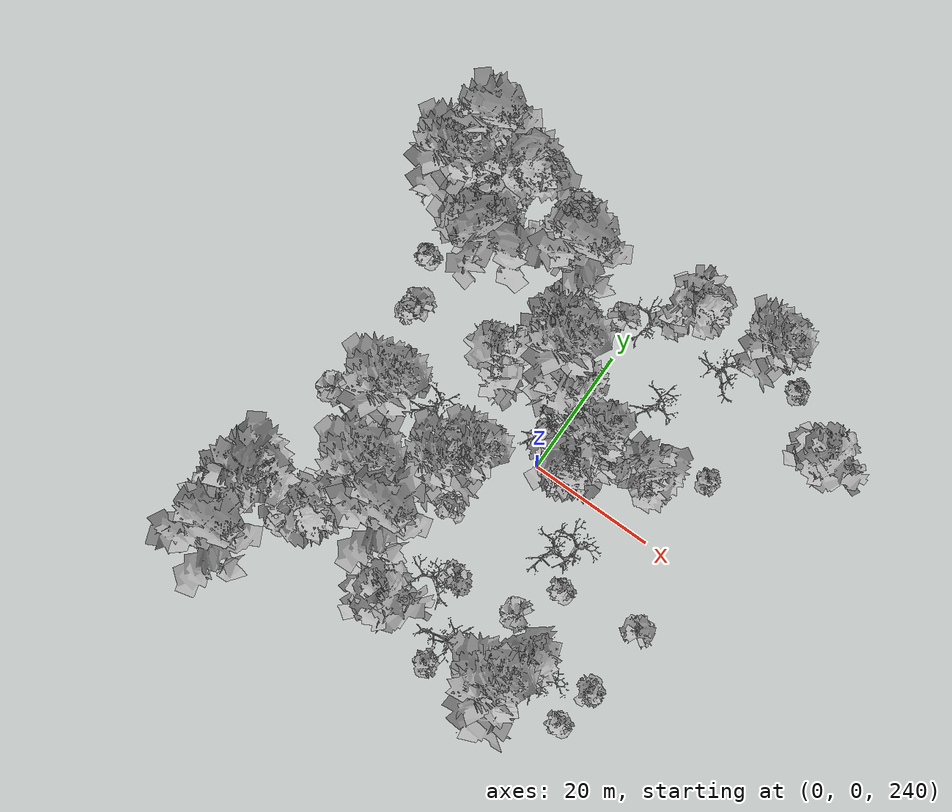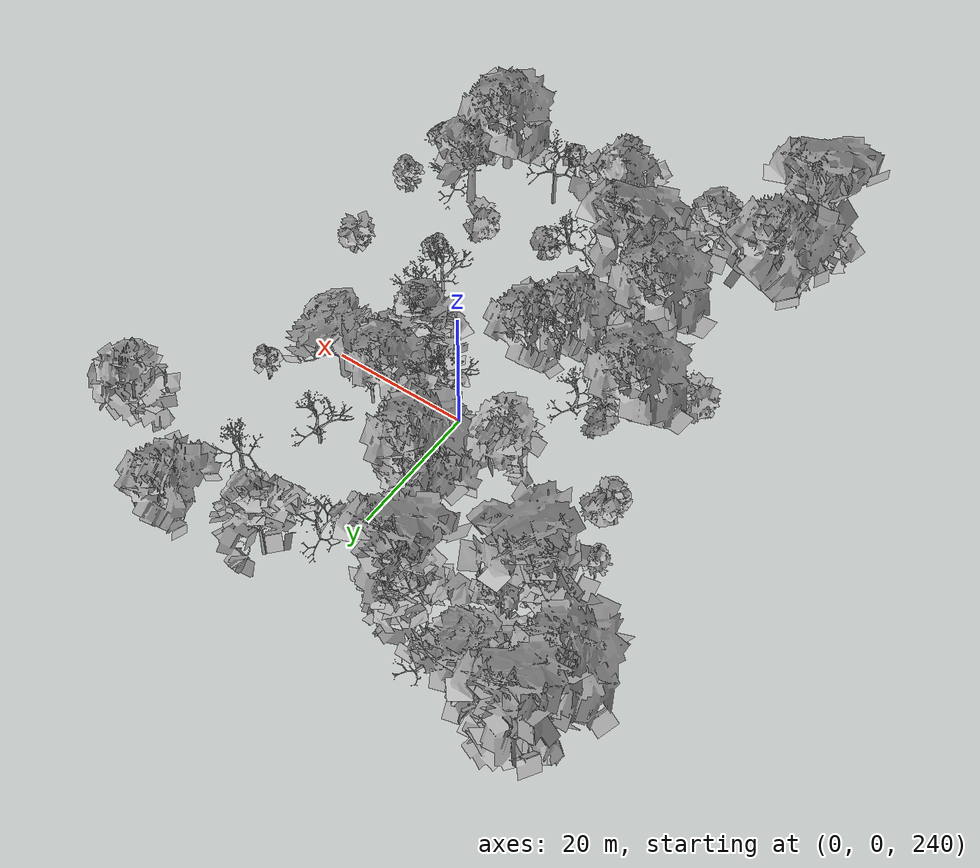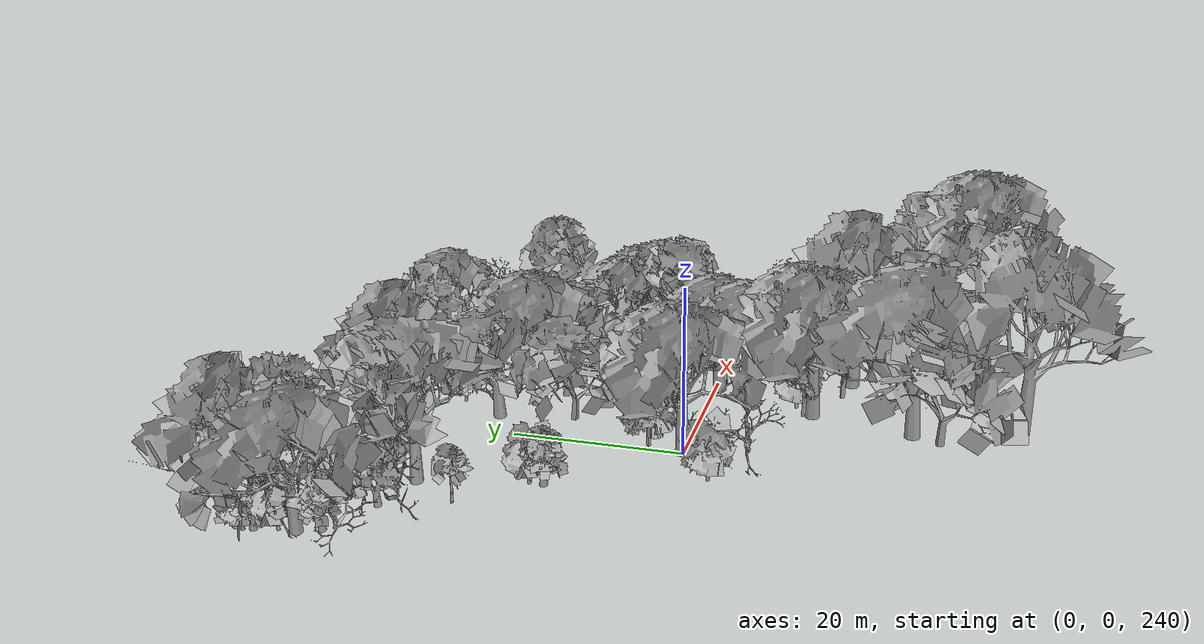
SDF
<sdf version="1.6">
 <world name="default">
  <light name="sun" type="directional">
   <pose>0 0 10 0 -0 0</pose>
   <diffuse>0.8 0.8 0.8 1</diffuse>
   <specular>0.2 0.2 0.2 1</specular>
   <attenuation>
    <range>1000</range>
    <constant>0.9</constant>
    <linear>0.01</linear>
    <quadratic>0.001</quadratic>
   </attenuation>
   <direction>-0.5 0.1 -0.9</direction>
  </light>
  <scene>
   <sky><clouds><speed>12</speed></clouds></sky>
   <ambient>0.4 0.4 0.4 1</ambient>
   <background>0.7 0.7 0.7 1</background>
   <shadows>1</shadows>
  </scene>
  <spherical_coordinates>
   <surface_model>EARTH_WGS84</surface_model>
   <latitude_deg>47.3977</latitude_deg>
   <longitude_deg>8.54559</longitude_deg>
   <elevation>0</elevation>
   <heading_deg>0</heading_deg>
  </spherical_coordinates>
  <physics name="default_physics" default="0" type="ode">
   <ode>
    <solver>
     <type>quick</type>
     <iters>100</iters>
     <sor>1.3</sor>
     <use_dynamic_moi_rescaling>0</use_dynamic_moi_rescaling>
    </solver>
    <constraints>
     <cfm>0</cfm>
     <erp>0.2</erp>
     <contact_max_correcting_vel>100</contact_max_correcting_vel>
     <contact_surface_layer>0.001</contact_surface_layer>
    </constraints>
   </ode>
   <max_step_size>0.002</max_step_size>
   <real_time_factor>1</real_time_factor>
   <real_time_update_rate>500</real_time_update_rate>
  </physics>
  <gravity>0 0 -9.8</gravity>
  <magnetic_field>6e-06 2.3e-05 -4.2e-05</magnetic_field>
  <atmosphere type="adiabatic"/>
  <model name="my_mesh0">
   <pose>-30.4895 23.0853 246.841 0 0 -0.739333</pose>
   <static>1</static>
   <link name="body">
    <visual name="visual">
     <geometry><mesh><uri>model://trees/0.dae</uri><scale>1 1 1</scale></mesh></geometry>
    </visual>
    <collision name="collision">
     <geometry><mesh><uri>model://trees/0.dae</uri><scale>1 1 1</scale></mesh></geometry>
    </collision>
   </link>
  </model>
  <model name="my_mesh1">
   <pose>-31.8235 30.2881 245.908 0 -0 1.54444</pose>
   <static>1</static>
   <link name="body">
    <visual name="visual">
     <geometry><mesh><uri>model://trees/13.dae</uri><scale>1 1 1</scale></mesh></geometry>
    </visual>
    <collision name="collision">
     <geometry><mesh><uri>model://trees/13.dae</uri><scale>1 1 1</scale></mesh></geometry>
    </collision>
   </link>
  </model>
  <model name="my_mesh2">
   <pose>-33.3648 33.0622 245.455 0 0 -0.035598</pose>
   <static>1</static>
   <link name="body">
    <visual name="visual">
     <geometry><mesh><uri>model://trees/7.dae</uri><scale>1 1 1</scale></mesh></geometry>
    </visual>
    <collision name="collision">
     <geometry><mesh><uri>model://trees/7.dae</uri><scale>1 1 1</scale></mesh></geometry>
    </collision>
   </link>
  </model>
  <model name="my_mesh3">
   <pose>-26.2538 35.2569 244.942 0 0 -1.43768</pose>
   <static>1</static>
   <link name="body">
    <visual name="visual">
     <geometry><mesh><uri>model://trees/8.dae</uri><scale>1 1 1</scale></mesh></geometry>
    </visual>
    <collision name="collision">
     <geometry><mesh><uri>model://trees/8.dae</uri><scale>1 1 1</scale></mesh></geometry>
    </collision>
   </link>
  </model>
  <model name="my_mesh4">
   <pose>-27.6537 29.1796 246.184 0 -0 0.764863</pose>
   <static>1</static>
   <link name="body">
    <visual name="visual">
     <geometry><mesh><uri>model://trees/19.dae</uri><scale>1 1 1</scale></mesh></geometry>
    </visual>
    <collision name="collision">
     <geometry><mesh><uri>model://trees/19.dae</uri><scale>1 1 1</scale></mesh></geometry>
    </collision>
   </link>
  </model>
  <model name="my_mesh5">
   <pose>-32.5691 28.2777 246.244 0 0 -1.03485</pose>
   <static>1</static>
   <link name="body">
    <visual name="visual">
     <geometry><mesh><uri>model://trees/2.dae</uri><scale>1 1 1</scale></mesh></geometry>
    </visual>
    <collision name="collision">
     <geometry><mesh><uri>model://trees/2.dae</uri><scale>1 1 1</scale></mesh></geometry>
    </collision>
   </link>
  </model>
  <model name="my_mesh6">
   <pose>-34.2355 35.939 244.93 0 -0 0.573628</pose>
   <static>1</static>
   <link name="body">
    <visual name="visual">
     <geometry><mesh><uri>model://trees/10.dae</uri><scale>1 1 1</scale></mesh></geometry>
    </visual>
    <collision name="collision">
     <geometry><mesh><uri>model://trees/10.dae</uri><scale>1 1 1</scale></mesh></geometry>
    </collision>
   </link>
  </model>
  <model name="my_mesh7">
   <pose>-30.7915 15.3641 248.406 0 -0 1.08461</pose>
   <static>1</static>
   <link name="body">
    <visual name="visual">
     <geometry><mesh><uri>model://trees/2.dae</uri><scale>1 1 1</scale></mesh></geometry>
    </visual>
    <collision name="collision">
     <geometry><mesh><uri>model://trees/2.dae</uri><scale>1 1 1</scale></mesh></geometry>
    </collision>
   </link>
  </model>
  <model name="my_mesh8">
   <pose>-34.97 35.0989 245.01 0 -0 1.31735</pose>
   <static>1</static>
   <link name="body">
    <visual name="visual">
     <geometry><mesh><uri>model://trees/5.dae</uri><scale>1 1 1</scale></mesh></geometry>
    </visual>
    <collision name="collision">
     <geometry><mesh><uri>model://trees/5.dae</uri><scale>1 1 1</scale></mesh></geometry>
    </collision>
   </link>
  </model>
  <model name="my_mesh9">
   <pose>-25.357 21.22 247.02 0 -0 1.40984</pose>
   <static>1</static>
   <link name="body">
    <visual name="visual">
     <geometry><mesh><uri>model://trees/10.dae</uri><scale>1 1 1</scale></mesh></geometry>
    </visual>
    <collision name="collision">
     <geometry><mesh><uri>model://trees/10.dae</uri><scale>1 1 1</scale></mesh></geometry>
    </collision>
   </link>
  </model>
  <model name="my_mesh10">
   <pose>-25.2448 35.5482 244.956 0 0 -0.233337</pose>
   <static>1</static>
   <link name="body">
    <visual name="visual">
     <geometry><mesh><uri>model://trees/2.dae</uri><scale>1 1 1</scale></mesh></geometry>
    </visual>
    <collision name="collision">
     <geometry><mesh><uri>model://trees/2.dae</uri><scale>1 1 1</scale></mesh></geometry>
    </collision>
   </link>
  </model>
  <model name="my_mesh11">
   <pose>-35.0816 33.9081 245.287 0 -0 0.598715</pose>
   <static>1</static>
   <link name="body">
    <visual name="visual">
     <geometry><mesh><uri>model://trees/0.dae</uri><scale>1 1 1</scale></mesh></geometry>
    </visual>
    <collision name="collision">
     <geometry><mesh><uri>model://trees/0.dae</uri><scale>1 1 1</scale></mesh></geometry>
    </collision>
   </link>
  </model>
  <model name="my_mesh12">
   <pose>-33.9147 35.3037 245.052 0 -0 0.193149</pose>
   <static>1</static>
   <link name="body">
    <visual name="visual">
     <geometry><mesh><uri>model://trees/3.dae</uri><scale>1 1 1</scale></mesh></geometry>
    </visual>
    <collision name="collision">
     <geometry><mesh><uri>model://trees/3.dae</uri><scale>1 1 1</scale></mesh></geometry>
    </collision>
   </link>
  </model>
  <model name="my_mesh13">
   <pose>-28.8473 22.7714 246.894 0 0 -0.452417</pose>
   <static>1</static>
   <link name="body">
    <visual name="visual">
     <geometry><mesh><uri>model://trees/19.dae</uri><scale>1 1 1</scale></mesh></geometry>
    </visual>
    <collision name="collision">
     <geometry><mesh><uri>model://trees/19.dae</uri><scale>1 1 1</scale></mesh></geometry>
    </collision>
   </link>
  </model>
  <model name="my_mesh14">
   <pose>-15.406 29.9703 244.993 0 0 -0.849897</pose>
   <static>1</static>
   <link name="body">
    <visual name="visual">
     <geometry><mesh><uri>model://trees/13.dae</uri><scale>1 1 1</scale></mesh></geometry>
    </visual>
    <collision name="collision">
     <geometry><mesh><uri>model://trees/13.dae</uri><scale>1 1 1</scale></mesh></geometry>
    </collision>
   </link>
  </model>
  <model name="my_mesh15">
   <pose>-35.8805 28.9777 246.158 0 -0 0.900302</pose>
   <static>1</static>
   <link name="body">
    <visual name="visual">
     <geometry><mesh><uri>model://trees/9.dae</uri><scale>1 1 1</scale></mesh></geometry>
    </visual>
    <collision name="collision">
     <geometry><mesh><uri>model://trees/9.dae</uri><scale>1 1 1</scale></mesh></geometry>
    </collision>
   </link>
  </model>
  <model name="my_mesh16">
   <pose>-29.7071 33.0453 245.543 0 -0 1.05499</pose>
   <static>1</static>
   <link name="body">
    <visual name="visual">
     <geometry><mesh><uri>model://trees/5.dae</uri><scale>1 1 1</scale></mesh></geometry>
    </visual>
    <collision name="collision">
     <geometry><mesh><uri>model://trees/5.dae</uri><scale>1 1 1</scale></mesh></geometry>
    </collision>
   </link>
  </model>
  <model name="my_mesh17">
   <pose>-30.5908 32.6708 245.599 0 0 -1.00466</pose>
   <static>1</static>
   <link name="body">
    <visual name="visual">
     <geometry><mesh><uri>model://trees/5.dae</uri><scale>1 1 1</scale></mesh></geometry>
    </visual>
    <collision name="collision">
     <geometry><mesh><uri>model://trees/5.dae</uri><scale>1 1 1</scale></mesh></geometry>
    </collision>
   </link>
  </model>
  <model name="my_mesh18">
   <pose>-23.703 25.2212 246.115 0 -0 1.01436</pose>
   <static>1</static>
   <link name="body">
    <visual name="visual">
     <geometry><mesh><uri>model://trees/7.dae</uri><scale>1 1 1</scale></mesh></geometry>
    </visual>
    <collision name="collision">
     <geometry><mesh><uri>model://trees/7.dae</uri><scale>1 1 1</scale></mesh></geometry>
    </collision>
   </link>
  </model>
  <model name="my_mesh19">
   <pose>-35.2731 31.1681 245.725 0 -0 0.144149</pose>
   <static>1</static>
   <link name="body">
    <visual name="visual">
     <geometry><mesh><uri>model://trees/5.dae</uri><scale>1 1 1</scale></mesh></geometry>
    </visual>
    <collision name="collision">
     <geometry><mesh><uri>model://trees/5.dae</uri><scale>1 1 1</scale></mesh></geometry>
    </collision>
   </link>
  </model>
  <model name="my_mesh20">
   <pose>-34.8713 35.3614 245.01 0 -0 0.708343</pose>
   <static>1</static>
   <link name="body">
    <visual name="visual">
     <geometry><mesh><uri>model://trees/15.dae</uri><scale>1 1 1</scale></mesh></geometry>
    </visual>
    <collision name="collision">
     <geometry><mesh><uri>model://trees/15.dae</uri><scale>1 1 1</scale></mesh></geometry>
    </collision>
   </link>
  </model>
  <model name="my_mesh21">
   <pose>-34.0647 34.8323 245.174 0 0 -0.041876</pose>
   <static>1</static>
   <link name="body">
    <visual name="visual">
     <geometry><mesh><uri>model://trees/6.dae</uri><scale>1 1 1</scale></mesh></geometry>
    </visual>
    <collision name="collision">
     <geometry><mesh><uri>model://trees/6.dae</uri><scale>1 1 1</scale></mesh></geometry>
    </collision>
   </link>
  </model>
  <model name="my_mesh22">
   <pose>-25.7076 35.4669 244.956 0 0 -1.3193</pose>
   <static>1</static>
   <link name="body">
    <visual name="visual">
     <geometry><mesh><uri>model://trees/11.dae</uri><scale>1 1 1</scale></mesh></geometry>
    </visual>
    <collision name="collision">
     <geometry><mesh><uri>model://trees/11.dae</uri><scale>1 1 1</scale></mesh></geometry>
    </collision>
   </link>
  </model>
  <model name="my_mesh23">
   <pose>-31.4193 35.0466 245.221 0 0 -0.243636</pose>
   <static>1</static>
   <link name="body">
    <visual name="visual">
     <geometry><mesh><uri>model://trees/12.dae</uri><scale>1 1 1</scale></mesh></geometry>
    </visual>
    <collision name="collision">
     <geometry><mesh><uri>model://trees/12.dae</uri><scale>1 1 1</scale></mesh></geometry>
    </collision>
   </link>
  </model>
  <model name="my_mesh24">
   <pose>-32.532 32.9864 245.436 0 0 -0.705671</pose>
   <static>1</static>
   <link name="body">
    <visual name="visual">
     <geometry><mesh><uri>model://trees/18.dae</uri><scale>1 1 1</scale></mesh></geometry>
    </visual>
    <collision name="collision">
     <geometry><mesh><uri>model://trees/18.dae</uri><scale>1 1 1</scale></mesh></geometry>
    </collision>
   </link>
  </model>
  <model name="my_mesh25">
   <pose>-25.4141 30.7893 245.906 0 0 -0.732876</pose>
   <static>1</static>
   <link name="body">
    <visual name="visual">
     <geometry><mesh><uri>model://trees/5.dae</uri><scale>1 1 1</scale></mesh></geometry>
    </visual>
    <collision name="collision">
     <geometry><mesh><uri>model://trees/5.dae</uri><scale>1 1 1</scale></mesh></geometry>
    </collision>
   </link>
  </model>
  <model name="my_mesh26">
   <pose>-29.2152 26.6927 246.378 0 -0 1.1353</pose>
   <static>1</static>
   <link name="body">
    <visual name="visual">
     <geometry><mesh><uri>model://trees/4.dae</uri><scale>1 1 1</scale></mesh></geometry>
    </visual>
    <collision name="collision">
     <geometry><mesh><uri>model://trees/4.dae</uri><scale>1 1 1</scale></mesh></geometry>
    </collision>
   </link>
  </model>
  <model name="my_mesh27">
   <pose>-33.4902 34.7869 245.209 0 0 -0.125738</pose>
   <static>1</static>
   <link name="body">
    <visual name="visual">
     <geometry><mesh><uri>model://trees/15.dae</uri><scale>1 1 1</scale></mesh></geometry>
    </visual>
    <collision name="collision">
     <geometry><mesh><uri>model://trees/15.dae</uri><scale>1 1 1</scale></mesh></geometry>
    </collision>
   </link>
  </model>
  <model name="my_mesh28">
   <pose>-29.2727 34.1851 245.383 0 0 -1.33185</pose>
   <static>1</static>
   <link name="body">
    <visual name="visual">
     <geometry><mesh><uri>model://trees/3.dae</uri><scale>1 1 1</scale></mesh></geometry>
    </visual>
    <collision name="collision">
     <geometry><mesh><uri>model://trees/3.dae</uri><scale>1 1 1</scale></mesh></geometry>
    </collision>
   </link>
  </model>
  <model name="my_mesh29">
   <pose>-35.2213 25.3268 246.783 0 -0 1.42656</pose>
   <static>1</static>
   <link name="body">
    <visual name="visual">
     <geometry><mesh><uri>model://trees/19.dae</uri><scale>1 1 1</scale></mesh></geometry>
    </visual>
    <collision name="collision">
     <geometry><mesh><uri>model://trees/19.dae</uri><scale>1 1 1</scale></mesh></geometry>
    </collision>
   </link>
  </model>
  <model name="my_mesh30">
   <pose>-33.8844 32.48 245.516 0 0 -1.45958</pose>
   <static>1</static>
   <link name="body">
    <visual name="visual">
     <geometry><mesh><uri>model://trees/8.dae</uri><scale>1 1 1</scale></mesh></geometry>
    </visual>
    <collision name="collision">
     <geometry><mesh><uri>model://trees/8.dae</uri><scale>1 1 1</scale></mesh></geometry>
    </collision>
   </link>
  </model>
  <model name="my_mesh31">
   <pose>-35.8268 26.3222 246.69 0 -0 0.712247</pose>
   <static>1</static>
   <link name="body">
    <visual name="visual">
     <geometry><mesh><uri>model://trees/0.dae</uri><scale>1 1 1</scale></mesh></geometry>
    </visual>
    <collision name="collision">
     <geometry><mesh><uri>model://trees/0.dae</uri><scale>1 1 1</scale></mesh></geometry>
    </collision>
   </link>
  </model>
  <model name="my_mesh32">
   <pose>-31.0461 34.8688 245.221 0 -0 1.01018</pose>
   <static>1</static>
   <link name="body">
    <visual name="visual">
     <geometry><mesh><uri>model://trees/2.dae</uri><scale>1 1 1</scale></mesh></geometry>
    </visual>
    <collision name="collision">
     <geometry><mesh><uri>model://trees/2.dae</uri><scale>1 1 1</scale></mesh></geometry>
    </collision>
   </link>
  </model>
  <model name="my_mesh33">
   <pose>-20.8109 -1.14632 251.581 0 -0 1.1619</pose>
   <static>1</static>
   <link name="body">
    <visual name="visual">
     <geometry><mesh><uri>model://trees/4.dae</uri><scale>1 1 1</scale></mesh></geometry>
    </visual>
    <collision name="collision">
     <geometry><mesh><uri>model://trees/4.dae</uri><scale>1 1 1</scale></mesh></geometry>
    </collision>
   </link>
  </model>
  <model name="my_mesh34">
   <pose>-13.6035 -19.5036 256.778 0 -0 0.150263</pose>
   <static>1</static>
   <link name="body">
    <visual name="visual">
     <geometry><mesh><uri>model://trees/10.dae</uri><scale>1 1 1</scale></mesh></geometry>
    </visual>
    <collision name="collision">
     <geometry><mesh><uri>model://trees/10.dae</uri><scale>1 1 1</scale></mesh></geometry>
    </collision>
   </link>
  </model>
  <model name="my_mesh35">
   <pose>3.87663 -32.7431 257.289 0 -0 0.197688</pose>
   <static>1</static>
   <link name="body">
    <visual name="visual">
     <geometry><mesh><uri>model://trees/2.dae</uri><scale>1 1 1</scale></mesh></geometry>
    </visual>
    <collision name="collision">
     <geometry><mesh><uri>model://trees/2.dae</uri><scale>1 1 1</scale></mesh></geometry>
    </collision>
   </link>
  </model>
  <model name="my_mesh36">
   <pose>1.7595 27.0882 244.045 0 -0 0.050217</pose>
   <static>1</static>
   <link name="body">
    <visual name="visual">
     <geometry><mesh><uri>model://trees/19.dae</uri><scale>1 1 1</scale></mesh></geometry>
    </visual>
    <collision name="collision">
     <geometry><mesh><uri>model://trees/19.dae</uri><scale>1 1 1</scale></mesh></geometry>
    </collision>
   </link>
  </model>
  <model name="my_mesh37">
   <pose>-33.0154 -28.6917 261.151 0 0 -0.446029</pose>
   <static>1</static>
   <link name="body">
    <visual name="visual">
     <geometry><mesh><uri>model://trees/13.dae</uri><scale>1 1 1</scale></mesh></geometry>
    </visual>
    <collision name="collision">
     <geometry><mesh><uri>model://trees/13.dae</uri><scale>1 1 1</scale></mesh></geometry>
    </collision>
   </link>
  </model>
  <model name="my_mesh38">
   <pose>9.61876 -9.72148 250.735 0 0 -0.26041</pose>
   <static>1</static>
   <link name="body">
    <visual name="visual">
     <geometry><mesh><uri>model://trees/17.dae</uri><scale>1 1 1</scale></mesh></geometry>
    </visual>
    <collision name="collision">
     <geometry><mesh><uri>model://trees/17.dae</uri><scale>1 1 1</scale></mesh></geometry>
    </collision>
   </link>
  </model>
  <model name="my_mesh39">
   <pose>-22.9712 -4.95087 252.266 0 -0 1.09028</pose>
   <static>1</static>
   <link name="body">
    <visual name="visual">
     <geometry><mesh><uri>model://trees/9.dae</uri><scale>1 1 1</scale></mesh></geometry>
    </visual>
    <collision name="collision">
     <geometry><mesh><uri>model://trees/9.dae</uri><scale>1 1 1</scale></mesh></geometry>
    </collision>
   </link>
  </model>
  <model name="my_mesh40">
   <pose>-5.43841 15.2108 247.095 0 -0 1.0248</pose>
   <static>1</static>
   <link name="body">
    <visual name="visual">
     <geometry><mesh><uri>model://trees/9.dae</uri><scale>1 1 1</scale></mesh></geometry>
    </visual>
    <collision name="collision">
     <geometry><mesh><uri>model://trees/9.dae</uri><scale>1 1 1</scale></mesh></geometry>
    </collision>
   </link>
  </model>
  <model name="my_mesh41">
   <pose>-2.28163 -22.5837 254.741 0 -0 1.10029</pose>
   <static>1</static>
   <link name="body">
    <visual name="visual">
     <geometry><mesh><uri>model://trees/19.dae</uri><scale>1 1 1</scale></mesh></geometry>
    </visual>
    <collision name="collision">
     <geometry><mesh><uri>model://trees/19.dae</uri><scale>1 1 1</scale></mesh></geometry>
    </collision>
   </link>
  </model>
  <model name="my_mesh42">
   <pose>-30.6597 -26.3393 260.439 0 -0 0.339841</pose>
   <static>1</static>
   <link name="body">
    <visual name="visual">
     <geometry><mesh><uri>model://trees/9.dae</uri><scale>1 1 1</scale></mesh></geometry>
    </visual>
    <collision name="collision">
     <geometry><mesh><uri>model://trees/9.dae</uri><scale>1 1 1</scale></mesh></geometry>
    </collision>
   </link>
  </model>
  <model name="my_mesh43">
   <pose>14.3542 26.3374 243.84 0 -0 0.959637</pose>
   <static>1</static>
   <link name="body">
    <visual name="visual">
     <geometry><mesh><uri>model://trees/16.dae</uri><scale>1 1 1</scale></mesh></geometry>
    </visual>
    <collision name="collision">
     <geometry><mesh><uri>model://trees/16.dae</uri><scale>1 1 1</scale></mesh></geometry>
    </collision>
   </link>
  </model>
  <model name="my_mesh44">
   <pose>7.22962 8.8455 247.692 0 -0 1.48857</pose>
   <static>1</static>
   <link name="body">
    <visual name="visual">
     <geometry><mesh><uri>model://trees/17.dae</uri><scale>1 1 1</scale></mesh></geometry>
    </visual>
    <collision name="collision">
     <geometry><mesh><uri>model://trees/17.dae</uri><scale>1 1 1</scale></mesh></geometry>
    </collision>
   </link>
  </model>
  <model name="my_mesh45">
   <pose>-5.93251 -27.1127 256.783 0 -0 0.269516</pose>
   <static>1</static>
   <link name="body">
    <visual name="visual">
     <geometry><mesh><uri>model://trees/5.dae</uri><scale>1 1 1</scale></mesh></geometry>
    </visual>
    <collision name="collision">
     <geometry><mesh><uri>model://trees/5.dae</uri><scale>1 1 1</scale></mesh></geometry>
    </collision>
   </link>
  </model>
  <model name="my_mesh46">
   <pose>-7.47751 -5.36772 251.975 0 -0 0.859781</pose>
   <static>1</static>
   <link name="body">
    <visual name="visual">
     <geometry><mesh><uri>model://trees/8.dae</uri><scale>1 1 1</scale></mesh></geometry>
    </visual>
    <collision name="collision">
     <geometry><mesh><uri>model://trees/8.dae</uri><scale>1 1 1</scale></mesh></geometry>
    </collision>
   </link>
  </model>
  <model name="my_mesh47">
   <pose>-18.0835 -15.4688 255.171 0 0 -0.793512</pose>
   <static>1</static>
   <link name="body">
    <visual name="visual">
     <geometry><mesh><uri>model://trees/3.dae</uri><scale>1 1 1</scale></mesh></geometry>
    </visual>
    <collision name="collision">
     <geometry><mesh><uri>model://trees/3.dae</uri><scale>1 1 1</scale></mesh></geometry>
    </collision>
   </link>
  </model>
  <model name="my_mesh48">
   <pose>-6.20336 -12.9097 253.118 0 -0 0.86812</pose>
   <static>1</static>
   <link name="body">
    <visual name="visual">
     <geometry><mesh><uri>model://trees/0.dae</uri><scale>1 1 1</scale></mesh></geometry>
    </visual>
    <collision name="collision">
     <geometry><mesh><uri>model://trees/0.dae</uri><scale>1 1 1</scale></mesh></geometry>
    </collision>
   </link>
  </model>
  <model name="my_mesh49">
   <pose>-8.6638 18.4199 246.653 0 -0 0.265647</pose>
   <static>1</static>
   <link name="body">
    <visual name="visual">
     <geometry><mesh><uri>model://trees/8.dae</uri><scale>1 1 1</scale></mesh></geometry>
    </visual>
    <collision name="collision">
     <geometry><mesh><uri>model://trees/8.dae</uri><scale>1 1 1</scale></mesh></geometry>
    </collision>
   </link>
  </model>
  <model name="my_mesh50">
   <pose>-28.3876 22.8928 246.835 0 0 -1.25854</pose>
   <static>1</static>
   <link name="body">
    <visual name="visual">
     <geometry><mesh><uri>model://trees/6.dae</uri><scale>1 1 1</scale></mesh></geometry>
    </visual>
    <collision name="collision">
     <geometry><mesh><uri>model://trees/6.dae</uri><scale>1 1 1</scale></mesh></geometry>
    </collision>
   </link>
  </model>
  <model name="my_mesh51">
   <pose>22.0824 12.372 245.558 0 0 -0.175413</pose>
   <static>1</static>
   <link name="body">
    <visual name="visual">
     <geometry><mesh><uri>model://trees/2.dae</uri><scale>1 1 1</scale></mesh></geometry>
    </visual>
    <collision name="collision">
     <geometry><mesh><uri>model://trees/2.dae</uri><scale>1 1 1</scale></mesh></geometry>
    </collision>
   </link>
  </model>
  <model name="my_mesh52">
   <pose>11.8821 -6.90221 250.105 0 -0 0.197032</pose>
   <static>1</static>
   <link name="body">
    <visual name="visual">
     <geometry><mesh><uri>model://trees/19.dae</uri><scale>1 1 1</scale></mesh></geometry>
    </visual>
    <collision name="collision">
     <geometry><mesh><uri>model://trees/19.dae</uri><scale>1 1 1</scale></mesh></geometry>
    </collision>
   </link>
  </model>
  <model name="my_mesh53">
   <pose>-3.45143 12.4642 247.526 0 -0 1.34985</pose>
   <static>1</static>
   <link name="body">
    <visual name="visual">
     <geometry><mesh><uri>model://trees/1.dae</uri><scale>1 1 1</scale></mesh></geometry>
    </visual>
    <collision name="collision">
     <geometry><mesh><uri>model://trees/1.dae</uri><scale>1 1 1</scale></mesh></geometry>
    </collision>
   </link>
  </model>
  <model name="my_mesh54">
   <pose>-23.5308 -11.2835 253.737 0 0 -1.31732</pose>
   <static>1</static>
   <link name="body">
    <visual name="visual">
     <geometry><mesh><uri>model://trees/18.dae</uri><scale>1 1 1</scale></mesh></geometry>
    </visual>
    <collision name="collision">
     <geometry><mesh><uri>model://trees/18.dae</uri><scale>1 1 1</scale></mesh></geometry>
    </collision>
   </link>
  </model>
  <model name="my_mesh55">
   <pose>25.4379 -22.8926 251.217 0 0 -0.597169</pose>
   <static>1</static>
   <link name="body">
    <visual name="visual">
     <geometry><mesh><uri>model://trees/1.dae</uri><scale>1 1 1</scale></mesh></geometry>
    </visual>
    <collision name="collision">
     <geometry><mesh><uri>model://trees/1.dae</uri><scale>1 1 1</scale></mesh></geometry>
    </collision>
   </link>
  </model>
  <model name="my_mesh56">
   <pose>4.70553 2.14763 249.448 0 0 -1.49698</pose>
   <static>1</static>
   <link name="body">
    <visual name="visual">
     <geometry><mesh><uri>model://trees/15.dae</uri><scale>1 1 1</scale></mesh></geometry>
    </visual>
    <collision name="collision">
     <geometry><mesh><uri>model://trees/15.dae</uri><scale>1 1 1</scale></mesh></geometry>
    </collision>
   </link>
  </model>
  <model name="my_mesh57">
   <pose>0.494827 -20.7039 253.576 0 0 -0.918477</pose>
   <static>1</static>
   <link name="body">
    <visual name="visual">
     <geometry><mesh><uri>model://trees/4.dae</uri><scale>1 1 1</scale></mesh></geometry>
    </visual>
    <collision name="collision">
     <geometry><mesh><uri>model://trees/4.dae</uri><scale>1 1 1</scale></mesh></geometry>
    </collision>
   </link>
  </model>
  <model name="my_mesh58">
   <pose>-29.906 -8.7832 253.583 0 -0 1.05604</pose>
   <static>1</static>
   <link name="body">
    <visual name="visual">
     <geometry><mesh><uri>model://trees/5.dae</uri><scale>1 1 1</scale></mesh></geometry>
    </visual>
    <collision name="collision">
     <geometry><mesh><uri>model://trees/5.dae</uri><scale>1 1 1</scale></mesh></geometry>
    </collision>
   </link>
  </model>
  <model name="my_mesh59">
   <pose>-5.78199 -28.6476 256.968 0 -0 1.52815</pose>
   <static>1</static>
   <link name="body">
    <visual name="visual">
     <geometry><mesh><uri>model://trees/14.dae</uri><scale>1 1 1</scale></mesh></geometry>
    </visual>
    <collision name="collision">
     <geometry><mesh><uri>model://trees/14.dae</uri><scale>1 1 1</scale></mesh></geometry>
    </collision>
   </link>
  </model>
  <model name="my_mesh60">
   <pose>-18.6484 -16.4599 255.49 0 -0 1.15468</pose>
   <static>1</static>
   <link name="body">
    <visual name="visual">
     <geometry><mesh><uri>model://trees/9.dae</uri><scale>1 1 1</scale></mesh></geometry>
    </visual>
    <collision name="collision">
     <geometry><mesh><uri>model://trees/9.dae</uri><scale>1 1 1</scale></mesh></geometry>
    </collision>
   </link>
  </model>
  <model name="my_mesh61">
   <pose>13.4627 -13.5029 250.198 0 -0 1.13115</pose>
   <static>1</static>
   <link name="body">
    <visual name="visual">
     <geometry><mesh><uri>model://trees/2.dae</uri><scale>1 1 1</scale></mesh></geometry>
    </visual>
    <collision name="collision">
     <geometry><mesh><uri>model://trees/2.dae</uri><scale>1 1 1</scale></mesh></geometry>
    </collision>
   </link>
  </model>
  <model name="my_mesh62">
   <pose>-21.7884 -24.6335 259.223 0 0 -0.907674</pose>
   <static>1</static>
   <link name="body">
    <visual name="visual">
     <geometry><mesh><uri>model://trees/15.dae</uri><scale>1 1 1</scale></mesh></geometry>
    </visual>
    <collision name="collision">
     <geometry><mesh><uri>model://trees/15.dae</uri><scale>1 1 1</scale></mesh></geometry>
    </collision>
   </link>
  </model>
  <model name="my_mesh63">
   <pose>-16.6433 -18.9517 256.882 0 -0 1.20096</pose>
   <static>1</static>
   <link name="body">
    <visual name="visual">
     <geometry><mesh><uri>model://trees/17.dae</uri><scale>1 1 1</scale></mesh></geometry>
    </visual>
    <collision name="collision">
     <geometry><mesh><uri>model://trees/17.dae</uri><scale>1 1 1</scale></mesh></geometry>
    </collision>
   </link>
  </model>
  <model name="my_mesh64">
   <pose>13.8199 -30.8327 256.092 0 -0 1.08514</pose>
   <static>1</static>
   <link name="body">
    <visual name="visual">
     <geometry><mesh><uri>model://trees/9.dae</uri><scale>1 1 1</scale></mesh></geometry>
    </visual>
    <collision name="collision">
     <geometry><mesh><uri>model://trees/9.dae</uri><scale>1 1 1</scale></mesh></geometry>
    </collision>
   </link>
  </model>
  <model name="my_mesh65">
   <pose>-1.86795 24.9794 244.622 0 0 -0.015757</pose>
   <static>1</static>
   <link name="body">
    <visual name="visual">
     <geometry><mesh><uri>model://trees/5.dae</uri><scale>1 1 1</scale></mesh></geometry>
    </visual>
    <collision name="collision">
     <geometry><mesh><uri>model://trees/5.dae</uri><scale>1 1 1</scale></mesh></geometry>
    </collision>
   </link>
  </model>
  <model name="my_mesh66">
   <pose>34.6022 25.009 240.596 0 -0 1.14533</pose>
   <static>1</static>
   <link name="body">
    <visual name="visual">
     <geometry><mesh><uri>model://trees/14.dae</uri><scale>1 1 1</scale></mesh></geometry>
    </visual>
    <collision name="collision">
     <geometry><mesh><uri>model://trees/14.dae</uri><scale>1 1 1</scale></mesh></geometry>
    </collision>
   </link>
  </model>
  <model name="my_mesh67">
   <pose>-27.9037 7.26915 249.862 0 -0 1.43544</pose>
   <static>1</static>
   <link name="body">
    <visual name="visual">
     <geometry><mesh><uri>model://trees/0.dae</uri><scale>1 1 1</scale></mesh></geometry>
    </visual>
    <collision name="collision">
     <geometry><mesh><uri>model://trees/0.dae</uri><scale>1 1 1</scale></mesh></geometry>
    </collision>
   </link>
  </model>
  <model name="my_mesh68">
   <pose>-28.5355 22.4935 246.835 0 -0 0.847347</pose>
   <static>1</static>
   <link name="body">
    <visual name="visual">
     <geometry><mesh><uri>model://trees/11.dae</uri><scale>1 1 1</scale></mesh></geometry>
    </visual>
    <collision name="collision">
     <geometry><mesh><uri>model://trees/11.dae</uri><scale>1 1 1</scale></mesh></geometry>
    </collision>
   </link>
  </model>
  <model name="my_mesh69">
   <pose>15.2384 -24.0779 253.725 0 0 -0.08302</pose>
   <static>1</static>
   <link name="body">
    <visual name="visual">
     <geometry><mesh><uri>model://trees/11.dae</uri><scale>1 1 1</scale></mesh></geometry>
    </visual>
    <collision name="collision">
     <geometry><mesh><uri>model://trees/11.dae</uri><scale>1 1 1</scale></mesh></geometry>
    </collision>
   </link>
  </model>
  <model name="my_mesh70">
   <pose>-30.6488 -35.11 261.851 0 -0 0.354436</pose>
   <static>1</static>
   <link name="body">
    <visual name="visual">
     <geometry><mesh><uri>model://trees/10.dae</uri><scale>1 1 1</scale></mesh></geometry>
    </visual>
    <collision name="collision">
     <geometry><mesh><uri>model://trees/10.dae</uri><scale>1 1 1</scale></mesh></geometry>
    </collision>
   </link>
  </model>
  <model name="my_mesh71">
   <pose>-2.27927 10.9145 248.113 0 -0 0.486345</pose>
   <static>1</static>
   <link name="body">
    <visual name="visual">
     <geometry><mesh><uri>model://trees/12.dae</uri><scale>1 1 1</scale></mesh></geometry>
    </visual>
    <collision name="collision">
     <geometry><mesh><uri>model://trees/12.dae</uri><scale>1 1 1</scale></mesh></geometry>
    </collision>
   </link>
  </model>
  <model name="my_mesh72">
   <pose>-0.927659 4.08612 249.568 0 0 -0.492568</pose>
   <static>1</static>
   <link name="body">
    <visual name="visual">
     <geometry><mesh><uri>model://trees/17.dae</uri><scale>1 1 1</scale></mesh></geometry>
    </visual>
    <collision name="collision">
     <geometry><mesh><uri>model://trees/17.dae</uri><scale>1 1 1</scale></mesh></geometry>
    </collision>
   </link>
  </model>
  <model name="my_mesh73">
   <pose>-12.7426 8.72132 249.457 0 -0 0.551277</pose>
   <static>1</static>
   <link name="body">
    <visual name="visual">
     <geometry><mesh><uri>model://trees/13.dae</uri><scale>1 1 1</scale></mesh></geometry>
    </visual>
    <collision name="collision">
     <geometry><mesh><uri>model://trees/13.dae</uri><scale>1 1 1</scale></mesh></geometry>
    </collision>
   </link>
  </model>
  <model name="my_mesh74">
   <pose>25.4311 31.6297 240.888 0 -0 0.236189</pose>
   <static>1</static>
   <link name="body">
    <visual name="visual">
     <geometry><mesh><uri>model://trees/2.dae</uri><scale>1 1 1</scale></mesh></geometry>
    </visual>
    <collision name="collision">
     <geometry><mesh><uri>model://trees/2.dae</uri><scale>1 1 1</scale></mesh></geometry>
    </collision>
   </link>
  </model>
  <model name="my_mesh75">
   <pose>-14.6633 30.6108 244.913 0 0 -0.109795</pose>
   <static>1</static>
   <link name="body">
    <visual name="visual">
     <geometry><mesh><uri>model://trees/14.dae</uri><scale>1 1 1</scale></mesh></geometry>
    </visual>
    <collision name="collision">
     <geometry><mesh><uri>model://trees/14.dae</uri><scale>1 1 1</scale></mesh></geometry>
    </collision>
   </link>
  </model>
  <model name="my_mesh76">
   <pose>10.3975 -20.0162 252.242 0 -0 0.929773</pose>
   <static>1</static>
   <link name="body">
    <visual name="visual">
     <geometry><mesh><uri>model://trees/5.dae</uri><scale>1 1 1</scale></mesh></geometry>
    </visual>
    <collision name="collision">
     <geometry><mesh><uri>model://trees/5.dae</uri><scale>1 1 1</scale></mesh></geometry>
    </collision>
   </link>
  </model>
  <model name="my_mesh77">
   <pose>5.78616 32.7931 243.16 0 0 -0.266512</pose>
   <static>1</static>
   <link name="body">
    <visual name="visual">
     <geometry><mesh><uri>model://trees/15.dae</uri><scale>1 1 1</scale></mesh></geometry>
    </visual>
    <collision name="collision">
     <geometry><mesh><uri>model://trees/15.dae</uri><scale>1 1 1</scale></mesh></geometry>
    </collision>
   </link>
  </model>
  <model name="my_mesh78">
   <pose>-11.2194 -9.24662 252.966 0 -0 0.760105</pose>
   <static>1</static>
   <link name="body">
    <visual name="visual">
     <geometry><mesh><uri>model://trees/8.dae</uri><scale>1 1 1</scale></mesh></geometry>
    </visual>
    <collision name="collision">
     <geometry><mesh><uri>model://trees/8.dae</uri><scale>1 1 1</scale></mesh></geometry>
    </collision>
   </link>
  </model>
  <model name="my_mesh79">
   <pose>-21.6639 24.1569 246.185 0 0 -0.622216</pose>
   <static>1</static>
   <link name="body">
    <visual name="visual">
     <geometry><mesh><uri>model://trees/3.dae</uri><scale>1 1 1</scale></mesh></geometry>
    </visual>
    <collision name="collision">
     <geometry><mesh><uri>model://trees/3.dae</uri><scale>1 1 1</scale></mesh></geometry>
    </collision>
   </link>
  </model>
  <model name="my_mesh80">
   <pose>23.9591 -29.1767 253.613 0 -0 1.16485</pose>
   <static>1</static>
   <link name="body">
    <visual name="visual">
     <geometry><mesh><uri>model://trees/2.dae</uri><scale>1 1 1</scale></mesh></geometry>
    </visual>
    <collision name="collision">
     <geometry><mesh><uri>model://trees/2.dae</uri><scale>1 1 1</scale></mesh></geometry>
    </collision>
   </link>
  </model>
  <model name="my_mesh81">
   <pose>-27.4373 8.79251 249.611 0 -0 0.165752</pose>
   <static>1</static>
   <link name="body">
    <visual name="visual">
     <geometry><mesh><uri>model://trees/5.dae</uri><scale>1 1 1</scale></mesh></geometry>
    </visual>
    <collision name="collision">
     <geometry><mesh><uri>model://trees/5.dae</uri><scale>1 1 1</scale></mesh></geometry>
    </collision>
   </link>
  </model>
  <model name="my_mesh82">
   <pose>5.88442 7.3247 248.255 0 -0 1.35882</pose>
   <static>1</static>
   <link name="body">
    <visual name="visual">
     <geometry><mesh><uri>model://trees/8.dae</uri><scale>1 1 1</scale></mesh></geometry>
    </visual>
    <collision name="collision">
     <geometry><mesh><uri>model://trees/8.dae</uri><scale>1 1 1</scale></mesh></geometry>
    </collision>
   </link>
  </model>
  <model name="my_mesh83">
   <pose>-1.23635 3.77994 249.787 0 0 -1.11651</pose>
   <static>1</static>
   <link name="body">
    <visual name="visual">
     <geometry><mesh><uri>model://trees/1.dae</uri><scale>1 1 1</scale></mesh></geometry>
    </visual>
    <collision name="collision">
     <geometry><mesh><uri>model://trees/1.dae</uri><scale>1 1 1</scale></mesh></geometry>
    </collision>
   </link>
  </model>
  <model name="my_mesh84">
   <pose>19.193 -25.0219 253.403 0 -0 0.033436</pose>
   <static>1</static>
   <link name="body">
    <visual name="visual">
     <geometry><mesh><uri>model://trees/19.dae</uri><scale>1 1 1</scale></mesh></geometry>
    </visual>
    <collision name="collision">
     <geometry><mesh><uri>model://trees/19.dae</uri><scale>1 1 1</scale></mesh></geometry>
    </collision>
   </link>
  </model>
  <model name="my_mesh85">
   <pose>4.57918 -28.5447 255.698 0 0 -1.11142</pose>
   <static>1</static>
   <link name="body">
    <visual name="visual">
     <geometry><mesh><uri>model://trees/16.dae</uri><scale>1 1 1</scale></mesh></geometry>
    </visual>
    <collision name="collision">
     <geometry><mesh><uri>model://trees/16.dae</uri><scale>1 1 1</scale></mesh></geometry>
    </collision>
   </link>
  </model>
  <model name="my_mesh86">
   <pose>-16.3867 -2.71809 251.879 0 0 -0.830724</pose>
   <static>1</static>
   <link name="body">
    <visual name="visual">
     <geometry><mesh><uri>model://trees/18.dae</uri><scale>1 1 1</scale></mesh></geometry>
    </visual>
    <collision name="collision">
     <geometry><mesh><uri>model://trees/18.dae</uri><scale>1 1 1</scale></mesh></geometry>
    </collision>
   </link>
  </model>
  <model name="my_mesh87">
   <pose>-24.5102 -28.6795 260.817 0 -0 0.858479</pose>
   <static>1</static>
   <link name="body">
    <visual name="visual">
     <geometry><mesh><uri>model://trees/2.dae</uri><scale>1 1 1</scale></mesh></geometry>
    </visual>
    <collision name="collision">
     <geometry><mesh><uri>model://trees/2.dae</uri><scale>1 1 1</scale></mesh></geometry>
    </collision>
   </link>
  </model>
  <model name="my_mesh88">
   <pose>1.22361 7.34592 248.864 0 -0 0.105174</pose>
   <static>1</static>
   <link name="body">
    <visual name="visual">
     <geometry><mesh><uri>model://trees/17.dae</uri><scale>1 1 1</scale></mesh></geometry>
    </visual>
    <collision name="collision">
     <geometry><mesh><uri>model://trees/17.dae</uri><scale>1 1 1</scale></mesh></geometry>
    </collision>
   </link>
  </model>
  <model name="my_mesh89">
   <pose>-12.7842 28.2172 245.129 0 -0 0.373986</pose>
   <static>1</static>
   <link name="body">
    <visual name="visual">
     <geometry><mesh><uri>model://trees/10.dae</uri><scale>1 1 1</scale></mesh></geometry>
    </visual>
    <collision name="collision">
     <geometry><mesh><uri>model://trees/10.dae</uri><scale>1 1 1</scale></mesh></geometry>
    </collision>
   </link>
  </model>
  <model name="my_mesh90">
   <pose>-0.685308 13.2125 247.188 0 -0 1.07423</pose>
   <static>1</static>
   <link name="body">
    <visual name="visual">
     <geometry><mesh><uri>model://trees/16.dae</uri><scale>1 1 1</scale></mesh></geometry>
    </visual>
    <collision name="collision">
     <geometry><mesh><uri>model://trees/16.dae</uri><scale>1 1 1</scale></mesh></geometry>
    </collision>
   </link>
  </model>
  <model name="my_mesh91">
   <pose>-20.6456 34.6924 244.844 0 0 -1.09381</pose>
   <static>1</static>
   <link name="body">
    <visual name="visual">
     <geometry><mesh><uri>model://trees/18.dae</uri><scale>1 1 1</scale></mesh></geometry>
    </visual>
    <collision name="collision">
     <geometry><mesh><uri>model://trees/18.dae</uri><scale>1 1 1</scale></mesh></geometry>
    </collision>
   </link>
  </model>
  <model name="my_mesh92">
   <pose>9.82532 16.7227 245.501 0 0 -0.5185</pose>
   <static>1</static>
   <link name="body">
    <visual name="visual">
     <geometry><mesh><uri>model://trees/17.dae</uri><scale>1 1 1</scale></mesh></geometry>
    </visual>
    <collision name="collision">
     <geometry><mesh><uri>model://trees/17.dae</uri><scale>1 1 1</scale></mesh></geometry>
    </collision>
   </link>
  </model>
  <model name="my_mesh93">
   <pose>-14.9764 -14.4249 254.508 0 -0 0.731489</pose>
   <static>1</static>
   <link name="body">
    <visual name="visual">
     <geometry><mesh><uri>model://trees/5.dae</uri><scale>1 1 1</scale></mesh></geometry>
    </visual>
    <collision name="collision">
     <geometry><mesh><uri>model://trees/5.dae</uri><scale>1 1 1</scale></mesh></geometry>
    </collision>
   </link>
  </model>
  <model name="my_mesh94">
   <pose>18.8322 34.1894 242.276 0 -0 0.723035</pose>
   <static>1</static>
   <link name="body">
    <visual name="visual">
     <geometry><mesh><uri>model://trees/8.dae</uri><scale>1 1 1</scale></mesh></geometry>
    </visual>
    <collision name="collision">
     <geometry><mesh><uri>model://trees/8.dae</uri><scale>1 1 1</scale></mesh></geometry>
    </collision>
   </link>
  </model>
  <model name="my_mesh95">
   <pose>22.3318 35.0151 241.381 0 0 -0.056473</pose>
   <static>1</static>
   <link name="body">
    <visual name="visual">
     <geometry><mesh><uri>model://trees/5.dae</uri><scale>1 1 1</scale></mesh></geometry>
    </visual>
    <collision name="collision">
     <geometry><mesh><uri>model://trees/5.dae</uri><scale>1 1 1</scale></mesh></geometry>
    </collision>
   </link>
  </model>
  <model name="my_mesh96">
   <pose>13.2816 6.92586 247.477 0 0 -0.729682</pose>
   <static>1</static>
   <link name="body">
    <visual name="visual">
     <geometry><mesh><uri>model://trees/8.dae</uri><scale>1 1 1</scale></mesh></geometry>
    </visual>
    <collision name="collision">
     <geometry><mesh><uri>model://trees/8.dae</uri><scale>1 1 1</scale></mesh></geometry>
    </collision>
   </link>
  </model>
  <model name="my_mesh97">
   <pose>3.8535 1.21277 249.883 0 0 -0.645587</pose>
   <static>1</static>
   <link name="body">
    <visual name="visual">
     <geometry><mesh><uri>model://trees/11.dae</uri><scale>1 1 1</scale></mesh></geometry>
    </visual>
    <collision name="collision">
     <geometry><mesh><uri>model://trees/11.dae</uri><scale>1 1 1</scale></mesh></geometry>
    </collision>
   </link>
  </model>
  <model name="my_mesh98">
   <pose>26.2282 -11.8268 247.789 0 0 -0.682305</pose>
   <static>1</static>
   <link name="body">
    <visual name="visual">
     <geometry><mesh><uri>model://trees/5.dae</uri><scale>1 1 1</scale></mesh></geometry>
    </visual>
    <collision name="collision">
     <geometry><mesh><uri>model://trees/5.dae</uri><scale>1 1 1</scale></mesh></geometry>
    </collision>
   </link>
  </model>
 </world>
</sdf>
